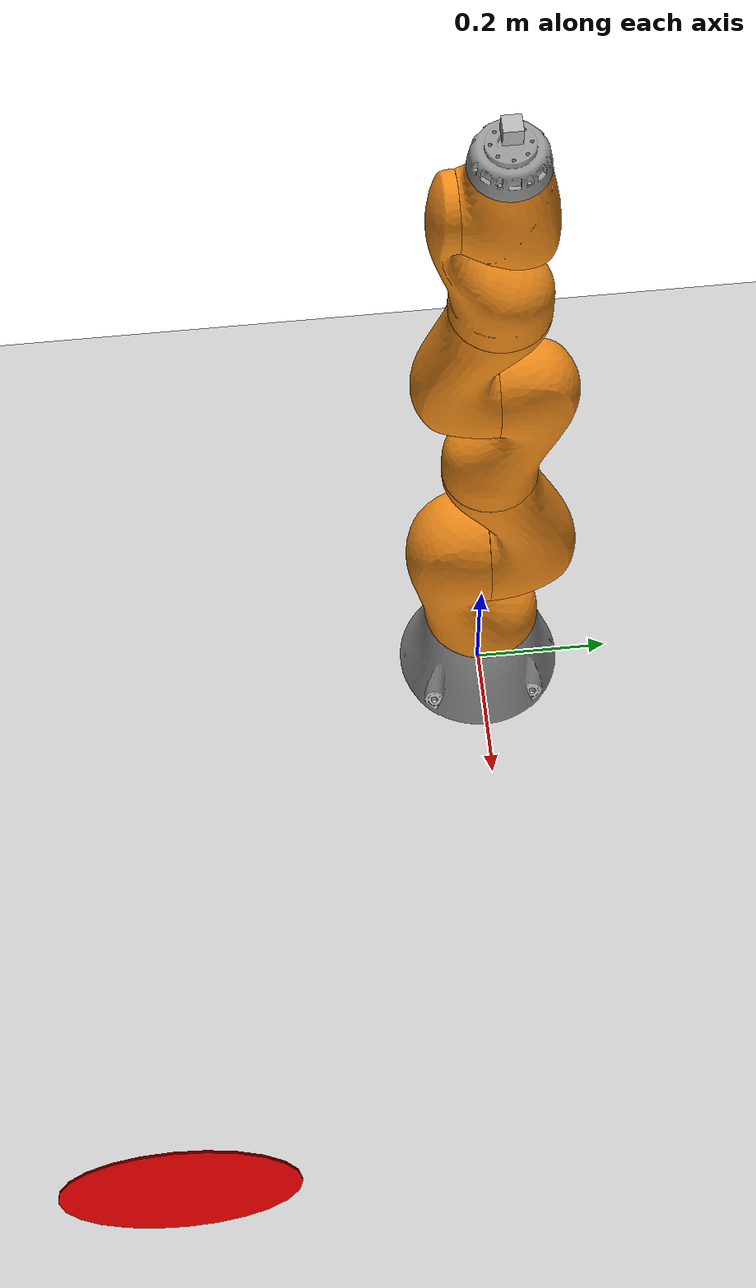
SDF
<sdf version="1.7">
 <world name="default">
  <model name="ground_plane">
   <static>1</static>
   <link name="link">
    <collision name="collision">
     <geometry><plane><normal>0 0 1</normal><size>100 100</size></plane></geometry>
     <surface>
      <contact><collide_bitmask>65535</collide_bitmask></contact>
      <friction><ode><mu>100</mu><mu2>50</mu2></ode></friction>
     </surface>
    </collision>
    <visual name="visual">
     <cast_shadows>0</cast_shadows>
     <geometry><plane><normal>0 0 1</normal><size>100 100</size></plane></geometry>
     <material>
      <script><uri>file://media/materials/scripts/gazebo.material</uri><name>Gazebo/Grey</name></script>
     </material>
    </visual>
    <kinematic>1</kinematic>
   </link>
  </model>
  <light name="sun" type="directional">
   <pose>0 0 10 0 -0 0</pose>
   <diffuse>0.8 0.8 0.8 1</diffuse>
   <specular>0.2 0.2 0.2 1</specular>
   <attenuation>
    <range>1000</range>
    <constant>0.9</constant>
    <linear>0.01</linear>
    <quadratic>0.001</quadratic>
   </attenuation>
   <direction>-0.5 0.1 -0.9</direction>
   <spot><inner_angle>0</inner_angle><outer_angle>0</outer_angle><falloff>0</falloff></spot>
  </light>
  <physics name="default_physics" default="0" type="ode">
   <max_step_size>0.01</max_step_size>
   <real_time_factor>1</real_time_factor>
   <real_time_update_rate>100</real_time_update_rate>
   <ode>
    <solver>
     <type>quick</type>
     <iters>50</iters>
     <sor>1</sor>
     <use_dynamic_moi_rescaling>0</use_dynamic_moi_rescaling>
    </solver>
    <constraints>
     <cfm>0</cfm>
     <erp>0.2</erp>
     <contact_max_correcting_vel>100</contact_max_correcting_vel>
     <contact_surface_layer>0.001</contact_surface_layer>
    </constraints>
   </ode>
  </physics>
  <gravity>0 0 -9.8</gravity>
  <magnetic_field>6e-06 2.3e-05 -4.2e-05</magnetic_field>
  <atmosphere type="adiabatic"/>
  <scene><ambient>0.4 0.4 0.4 1</ambient><background>0.7 0.7 0.7 1</background><shadows>1</shadows></scene>
  <spherical_coordinates>
   <surface_model>EARTH_WGS84</surface_model>
   <latitude_deg>0</latitude_deg>
   <longitude_deg>0</longitude_deg>
   <elevation>0</elevation>
   <heading_deg>0</heading_deg>
  </spherical_coordinates>
  <model name="circular_object">
   <static>1</static>
   <link name="link">
    <inertial>
     <mass>0.001</mass>
     <inertia>
      <ixx>3.75e-06</ixx>
      <ixy>0</ixy>
      <ixz>0</ixz>
      <iyy>1.875e-06</iyy>
      <iyz>0</iyz>
      <izz>1.875e-06</izz>
     </inertia>
    </inertial>
    <visual name="front_visual">
     <geometry><cylinder><radius>0.15</radius><length>0.001</length></cylinder></geometry>
     <material><ambient>1 0 0 1</ambient></material>
    </visual>
    <visual name="rear_visual">
     <pose>0 0 -0.002 0 -0 0</pose>
     <geometry><cylinder><radius>0.15</radius><length>0.001</length></cylinder></geometry>
     <material><ambient>1 0 0 1</ambient></material>
    </visual>
    <collision name="collision">
     <geometry><cylinder><radius>0.15</radius><length>0.001</length></cylinder></geometry>
    </collision>
    <kinematic>1</kinematic>
   </link>
   <pose>1 -0.5 0.6 -0 1.57 3.14</pose>
  </model>
  <model name="iiwa">
   <joint name="world_iiwa_joint" type="fixed">
    <pose relative_to="__model__">0 0 0 0 -0 0</pose>
    <parent>world</parent>
    <child>iiwa_link_0</child>
   </joint>
   <link name="iiwa_link_0">
    <pose relative_to="world_iiwa_joint">0 0 0 0 -0 0</pose>
    <inertial>
     <pose>-0.1 0 0.07 0 -0 0</pose>
     <mass>5</mass>
     <inertia><ixx>0.05</ixx><ixy>0</ixy><ixz>0</ixz><iyy>0.06</iyy><iyz>0</iyz><izz>0.03</izz></inertia>
    </inertial>
    <collision name="iiwa_link_0_collision">
     <geometry>
      <mesh>
       <scale>1 1 1</scale>
       <uri>/home/dev/catkin_ws/src/iiwa_stack/iiwa_description/meshes/iiwa14/collision/link_0.stl</uri>
      </mesh>
     </geometry>
     <surface><friction><ode><mu>0.2</mu><mu2>0.2</mu2></ode></friction></surface>
    </collision>
    <visual name="iiwa_link_0_visual">
     <geometry>
      <mesh>
       <scale>1 1 1</scale>
       <uri>/home/dev/catkin_ws/src/iiwa_stack/iiwa_description/meshes/iiwa14/visual/link_0.stl</uri>
      </mesh>
     </geometry>
     <material>
      <script><name>Gazebo/Grey</name><uri>file://media/materials/scripts/gazebo.material</uri></script>
     </material>
    </visual>
   </link>
   <joint name="iiwa_joint_1" type="revolute">
    <pose relative_to="iiwa_link_0">0 0 0.1575 0 -0 0</pose>
    <parent>iiwa_link_0</parent>
    <child>iiwa_link_1</child>
    <axis>
     <xyz>0 0 1</xyz>
     <limit><lower>-2.96706</lower><upper>2.96706</upper><effort>1000</effort><velocity>1000</velocity></limit>
     <dynamics>
      <damping>0</damping>
      <friction>0</friction>
      <spring_reference>0</spring_reference>
      <spring_stiffness>0</spring_stiffness>
     </dynamics>
    </axis>
   </joint>
   <link name="iiwa_link_1">
    <pose relative_to="iiwa_joint_1">0 0 0 0 -0 0</pose>
    <inertial>
     <pose>0 -0.03 0.12 0 -0 0</pose>
     <mass>4</mass>
     <inertia><ixx>0.1</ixx><ixy>0</ixy><ixz>0</ixz><iyy>0.09</iyy><iyz>0</iyz><izz>0.02</izz></inertia>
    </inertial>
    <collision name="iiwa_link_1_collision">
     <geometry>
      <mesh>
       <scale>1 1 1</scale>
       <uri>/home/dev/catkin_ws/src/iiwa_stack/iiwa_description/meshes/iiwa14/collision/link_1.stl</uri>
      </mesh>
     </geometry>
     <surface><friction><ode><mu>0.2</mu><mu2>0.2</mu2></ode></friction></surface>
    </collision>
    <visual name="iiwa_link_1_visual">
     <geometry>
      <mesh>
       <scale>1 1 1</scale>
       <uri>/home/dev/catkin_ws/src/iiwa_stack/iiwa_description/meshes/iiwa14/visual/link_1.stl</uri>
      </mesh>
     </geometry>
     <material>
      <script><name>Gazebo/Orange</name><uri>file://media/materials/scripts/gazebo.material</uri></script>
     </material>
    </visual>
   </link>
   <joint name="iiwa_joint_2" type="revolute">
    <pose relative_to="iiwa_link_1">0 0 0.2025 1.5708 -0 3.14159</pose>
    <parent>iiwa_link_1</parent>
    <child>iiwa_link_2</child>
    <axis>
     <xyz>0 0 1</xyz>
     <limit><lower>-2.0944</lower><upper>2.0944</upper><effort>1000</effort><velocity>1000</velocity></limit>
     <dynamics>
      <damping>0</damping>
      <friction>0</friction>
      <spring_reference>0</spring_reference>
      <spring_stiffness>0</spring_stiffness>
     </dynamics>
    </axis>
   </joint>
   <link name="iiwa_link_2">
    <pose relative_to="iiwa_joint_2">0 0 0 0 -0 0</pose>
    <inertial>
     <pose>0.0003 0.059 0.042 0 -0 0</pose>
     <mass>4</mass>
     <inertia><ixx>0.05</ixx><ixy>0</ixy><ixz>0</ixz><iyy>0.018</iyy><iyz>0</iyz><izz>0.044</izz></inertia>
    </inertial>
    <collision name="iiwa_link_2_collision">
     <geometry>
      <mesh>
       <scale>1 1 1</scale>
       <uri>/home/dev/catkin_ws/src/iiwa_stack/iiwa_description/meshes/iiwa14/collision/link_2.stl</uri>
      </mesh>
     </geometry>
     <surface><friction><ode><mu>0.2</mu><mu2>0.2</mu2></ode></friction></surface>
    </collision>
    <visual name="iiwa_link_2_visual">
     <geometry>
      <mesh>
       <scale>1 1 1</scale>
       <uri>/home/dev/catkin_ws/src/iiwa_stack/iiwa_description/meshes/iiwa14/visual/link_2.stl</uri>
      </mesh>
     </geometry>
     <material>
      <script><name>Gazebo/Orange</name><uri>file://media/materials/scripts/gazebo.material</uri></script>
     </material>
    </visual>
   </link>
   <joint name="iiwa_joint_3" type="revolute">
    <pose relative_to="iiwa_link_2">0 0.2045 0 1.5708 -0 3.14159</pose>
    <parent>iiwa_link_2</parent>
    <child>iiwa_link_3</child>
    <axis>
     <xyz>0 0 1</xyz>
     <limit><lower>-2.96706</lower><upper>2.96706</upper><effort>1000</effort><velocity>1000</velocity></limit>
     <dynamics>
      <damping>0</damping>
      <friction>0</friction>
      <spring_reference>0</spring_reference>
      <spring_stiffness>0</spring_stiffness>
     </dynamics>
    </axis>
   </joint>
   <link name="iiwa_link_3">
    <pose relative_to="iiwa_joint_3">0 0 0 0 -0 0</pose>
    <inertial>
     <pose>0 0.03 0.13 0 -0 0</pose>
     <mass>3</mass>
     <inertia><ixx>0.08</ixx><ixy>0</ixy><ixz>0</ixz><iyy>0.075</iyy><iyz>0</iyz><izz>0.01</izz></inertia>
    </inertial>
    <collision name="iiwa_link_3_collision">
     <geometry>
      <mesh>
       <scale>1 1 1</scale>
       <uri>/home/dev/catkin_ws/src/iiwa_stack/iiwa_description/meshes/iiwa14/collision/link_3.stl</uri>
      </mesh>
     </geometry>
     <surface><friction><ode><mu>0.2</mu><mu2>0.2</mu2></ode></friction></surface>
    </collision>
    <visual name="iiwa_link_3_visual">
     <geometry>
      <mesh>
       <scale>1 1 1</scale>
       <uri>/home/dev/catkin_ws/src/iiwa_stack/iiwa_description/meshes/iiwa14/visual/link_3.stl</uri>
      </mesh>
     </geometry>
     <material>
      <script><name>Gazebo/Orange</name><uri>file://media/materials/scripts/gazebo.material</uri></script>
     </material>
    </visual>
   </link>
   <joint name="iiwa_joint_4" type="revolute">
    <pose relative_to="iiwa_link_3">0 0 0.2155 1.5708 -0 0</pose>
    <parent>iiwa_link_3</parent>
    <child>iiwa_link_4</child>
    <axis>
     <xyz>0 0 1</xyz>
     <limit><lower>-2.0944</lower><upper>2.0944</upper><effort>1000</effort><velocity>1000</velocity></limit>
     <dynamics>
      <damping>0</damping>
      <friction>0</friction>
      <spring_reference>0</spring_reference>
      <spring_stiffness>0</spring_stiffness>
     </dynamics>
    </axis>
   </joint>
   <link name="iiwa_link_4">
    <pose relative_to="iiwa_joint_4">0 0 0 0 -0 0</pose>
    <inertial>
     <pose>0 0.067 0.034 0 -0 0</pose>
     <mass>2.7</mass>
     <inertia><ixx>0.03</ixx><ixy>0</ixy><ixz>0</ixz><iyy>0.01</iyy><iyz>0</iyz><izz>0.029</izz></inertia>
    </inertial>
    <collision name="iiwa_link_4_collision">
     <geometry>
      <mesh>
       <scale>1 1 1</scale>
       <uri>/home/dev/catkin_ws/src/iiwa_stack/iiwa_description/meshes/iiwa14/collision/link_4.stl</uri>
      </mesh>
     </geometry>
     <surface><friction><ode><mu>0.2</mu><mu2>0.2</mu2></ode></friction></surface>
    </collision>
    <visual name="iiwa_link_4_visual">
     <geometry>
      <mesh>
       <scale>1 1 1</scale>
       <uri>/home/dev/catkin_ws/src/iiwa_stack/iiwa_description/meshes/iiwa14/visual/link_4.stl</uri>
      </mesh>
     </geometry>
     <material>
      <script><name>Gazebo/Orange</name><uri>file://media/materials/scripts/gazebo.material</uri></script>
     </material>
    </visual>
   </link>
   <joint name="iiwa_joint_5" type="revolute">
    <pose relative_to="iiwa_link_4">0 0.1845 0 1.5708 -0 3.14159</pose>
    <parent>iiwa_link_4</parent>
    <child>iiwa_link_5</child>
    <axis>
     <xyz>0 0 1</xyz>
     <limit><lower>-2.96706</lower><upper>2.96706</upper><effort>1000</effort><velocity>1000</velocity></limit>
     <dynamics>
      <damping>0</damping>
      <friction>0</friction>
      <spring_reference>0</spring_reference>
      <spring_stiffness>0</spring_stiffness>
     </dynamics>
    </axis>
   </joint>
   <link name="iiwa_link_5">
    <pose relative_to="iiwa_joint_5">0 0 0 0 -0 0</pose>
    <inertial>
     <pose>0.0001 0.021 0.076 0 -0 0</pose>
     <mass>1.7</mass>
     <inertia><ixx>0.02</ixx><ixy>0</ixy><ixz>0</ixz><iyy>0.018</iyy><iyz>0</iyz><izz>0.005</izz></inertia>
    </inertial>
    <collision name="iiwa_link_5_collision">
     <geometry>
      <mesh>
       <scale>1 1 1</scale>
       <uri>/home/dev/catkin_ws/src/iiwa_stack/iiwa_description/meshes/iiwa14/collision/link_5.stl</uri>
      </mesh>
     </geometry>
     <surface><friction><ode><mu>0.2</mu><mu2>0.2</mu2></ode></friction></surface>
    </collision>
    <visual name="iiwa_link_5_visual">
     <geometry>
      <mesh>
       <scale>1 1 1</scale>
       <uri>/home/dev/catkin_ws/src/iiwa_stack/iiwa_description/meshes/iiwa14/visual/link_5.stl</uri>
      </mesh>
     </geometry>
     <material>
      <script><name>Gazebo/Orange</name><uri>file://media/materials/scripts/gazebo.material</uri></script>
     </material>
    </visual>
   </link>
   <joint name="iiwa_joint_6" type="revolute">
    <pose relative_to="iiwa_link_5">0 0 0.2155 1.5708 -0 0</pose>
    <parent>iiwa_link_5</parent>
    <child>iiwa_link_6</child>
    <axis>
     <xyz>0 0 1</xyz>
     <limit><lower>-2.0944</lower><upper>2.0944</upper><effort>1000</effort><velocity>1000</velocity></limit>
     <dynamics>
      <damping>0</damping>
      <friction>0</friction>
      <spring_reference>0</spring_reference>
      <spring_stiffness>0</spring_stiffness>
     </dynamics>
    </axis>
   </joint>
   <link name="iiwa_link_6">
    <pose relative_to="iiwa_joint_6">0 0 0 0 -0 0</pose>
    <inertial>
     <pose>0 0.0006 0.0004 0 -0 0</pose>
     <mass>1.8</mass>
     <inertia><ixx>0.005</ixx><ixy>0</ixy><ixz>0</ixz><iyy>0.0036</iyy><iyz>0</iyz><izz>0.0047</izz></inertia>
    </inertial>
    <collision name="iiwa_link_6_collision">
     <geometry>
      <mesh>
       <scale>1 1 1</scale>
       <uri>/home/dev/catkin_ws/src/iiwa_stack/iiwa_description/meshes/iiwa14/collision/link_6.stl</uri>
      </mesh>
     </geometry>
     <surface><friction><ode><mu>0.2</mu><mu2>0.2</mu2></ode></friction></surface>
    </collision>
    <visual name="iiwa_link_6_visual">
     <geometry>
      <mesh>
       <scale>1 1 1</scale>
       <uri>/home/dev/catkin_ws/src/iiwa_stack/iiwa_description/meshes/iiwa14/visual/link_6.stl</uri>
      </mesh>
     </geometry>
     <material>
      <script><name>Gazebo/Orange</name><uri>file://media/materials/scripts/gazebo.material</uri></script>
     </material>
    </visual>
   </link>
   <joint name="iiwa_joint_7" type="revolute">
    <pose relative_to="iiwa_link_6">0 0.081 0 1.5708 -0 3.14159</pose>
    <parent>iiwa_link_6</parent>
    <child>iiwa_link_7</child>
    <axis>
     <xyz>0 0 1</xyz>
     <limit><lower>-3.05433</lower><upper>3.05433</upper><effort>1000</effort><velocity>1000</velocity></limit>
     <dynamics>
      <damping>0</damping>
      <friction>0</friction>
      <spring_reference>0</spring_reference>
      <spring_stiffness>0</spring_stiffness>
     </dynamics>
    </axis>
    <physics>
     <provide_feedback>1</provide_feedback>
     <ode><limit><cfm>0</cfm><erp>0.2</erp></limit><provide_feedback>1</provide_feedback></ode>
    </physics>
   </joint>
   <link name="iiwa_link_7">
    <pose relative_to="iiwa_joint_7">0 0 0 0 -0 0</pose>
    <inertial>
     <pose>0 0 0.020002 0 -0 0</pose>
     <mass>0.30001</mass>
     <inertia>
      <ixx>0.00100102</ixx>
      <ixy>0</ixy>
      <ixz>0</ixz>
      <iyy>0.00100102</iyy>
      <iyz>0</iyz>
      <izz>0.001001</izz>
     </inertia>
    </inertial>
    <collision name="iiwa_link_7_collision">
     <geometry>
      <mesh>
       <scale>1 1 1</scale>
       <uri>/home/dev/catkin_ws/src/iiwa_stack/iiwa_description/meshes/iiwa14/collision/link_7.stl</uri>
      </mesh>
     </geometry>
     <surface><friction><ode><mu>0.2</mu><mu2>0.2</mu2></ode></friction></surface>
    </collision>
    <collision name="iiwa_link_7_fixed_joint_lump__camera_link_collision_1">
     <pose>0 0 0.07 0 -0 0</pose>
     <geometry><box><size>0.025 0.025 0.025</size></box></geometry>
    </collision>
    <visual name="iiwa_link_7_visual">
     <geometry>
      <mesh>
       <scale>1 1 1</scale>
       <uri>/home/dev/catkin_ws/src/iiwa_stack/iiwa_description/meshes/iiwa14/visual/link_7.stl</uri>
      </mesh>
     </geometry>
     <material>
      <script><name>Gazebo/Grey</name><uri>file://media/materials/scripts/gazebo.material</uri></script>
     </material>
    </visual>
    <visual name="iiwa_link_7_fixed_joint_lump__camera_link_visual_1">
     <pose>0 0 0.07 0 -0 0</pose>
     <geometry><box><size>0.025 0.025 0.025</size></box></geometry>
    </visual>
    <sensor name="camera1" type="camera">
     <update_rate>30</update_rate>
     <camera name="head">
      <horizontal_fov>1.39626</horizontal_fov>
      <image><width>800</width><height>800</height><format>R8G8B8</format></image>
      <clip><near>0.02</near><far>300</far></clip>
      <noise><type>gaussian</type><mean>0</mean><stddev>0.007</stddev></noise>
     </camera>
     <plugin name="camera_controller" filename="libgazebo_ros_camera.so">
      <alwaysOn>1</alwaysOn>
      <updateRate>0.0</updateRate>
      <cameraName>iiwa/camera1</cameraName>
      <imageTopicName>image_raw</imageTopicName>
      <cameraInfoTopicName>camera_info</cameraInfoTopicName>
      <frameName>camera_link_optical</frameName>
      <hackBaseline>0.0</hackBaseline>
      <distortionK1>0.0</distortionK1>
      <distortionK2>0.0</distortionK2>
      <distortionK3>0.0</distortionK3>
      <distortionT1>0.0</distortionT1>
      <distortionT2>0.0</distortionT2>
      <CxPrime>0</CxPrime>
      <Cx>0.0</Cx>
      <Cy>0.0</Cy>
      <focalLength>0.0</focalLength>
      <robotNamespace>/</robotNamespace>
     </plugin>
     <pose>0 0 0.07 0 -0 0</pose>
    </sensor>
   </link>
   <plugin name="ft_sensor" filename="libgazebo_ros_ft_sensor.so">
    <updateRate>50.0</updateRate>
    <topicName>/iiwa/state/CartesianWrench</topicName>
    <jointName>iiwa_joint_7</jointName>
    <robotNamespace>/</robotNamespace>
   </plugin>
   <static>0</static>
   <plugin name="gazebo_ros_control" filename="libgazebo_ros_control.so">
    <robotNamespace>/iiwa</robotNamespace>
   </plugin>
  </model>
 </world>
</sdf>
